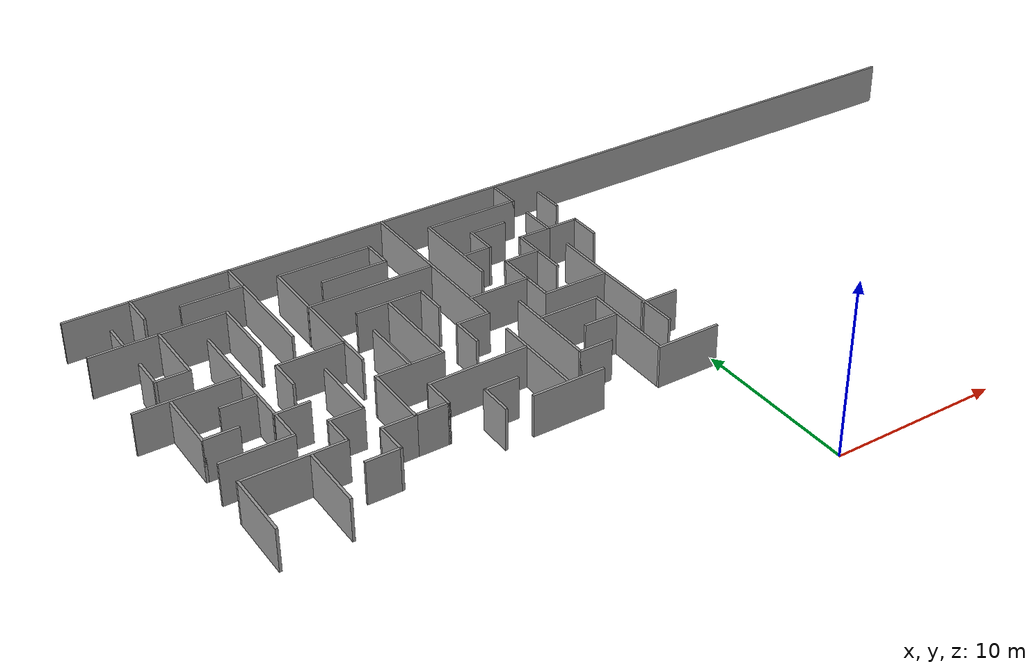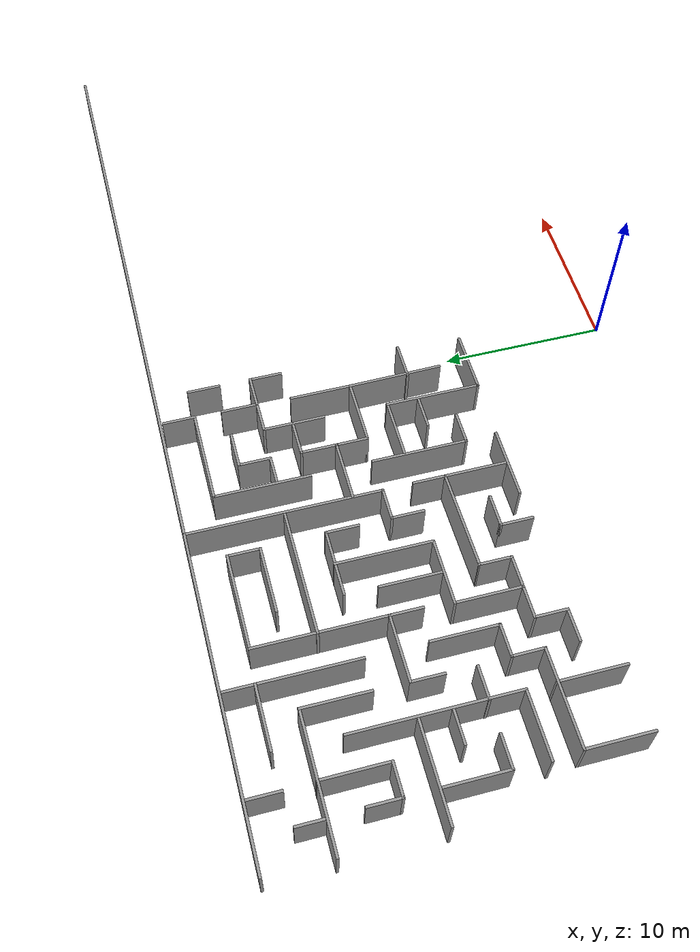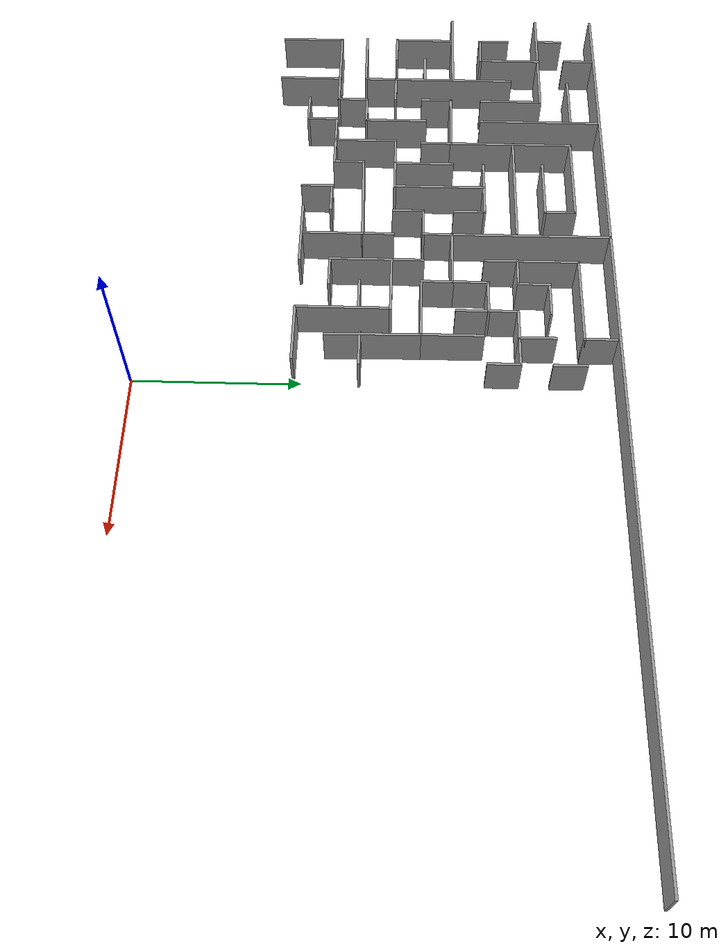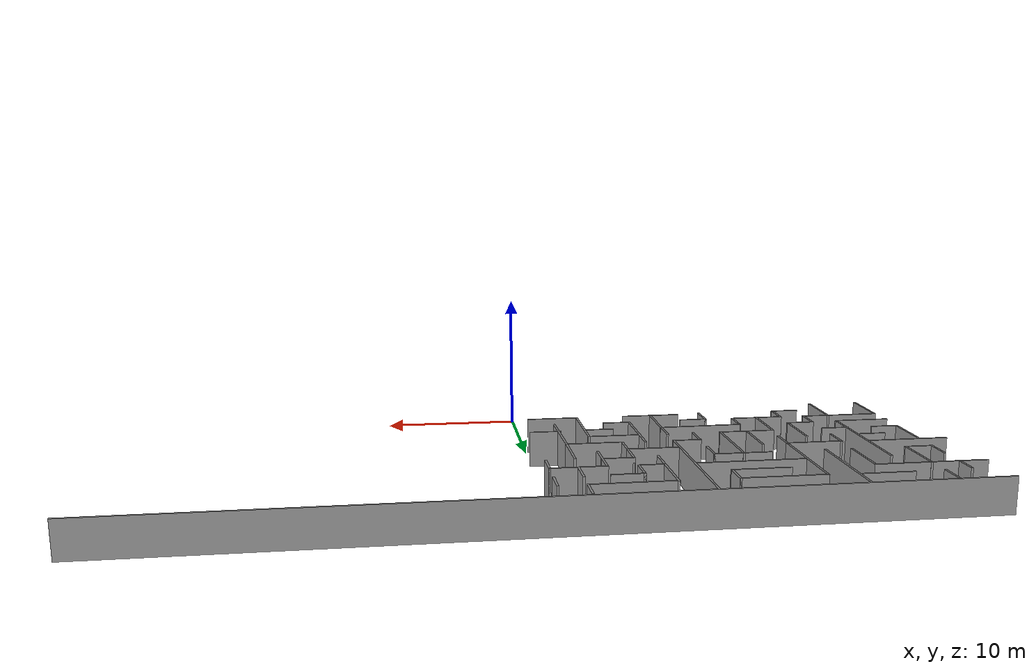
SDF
<sdf version="1.7">
 <model name="maze4">
  <pose>-0.019787 0.082438 0 0 -0 0</pose>
  <link name="Wall_0">
   <collision name="Wall_0_Collision">
    <geometry><box><size>56.75 0.15 2.5</size></box></geometry>
    <pose>0 0 1.25 0 -0 0</pose>
   </collision>
   <visual name="Wall_0_Visual">
    <pose>0 0 1.25 0 -0 0</pose>
    <geometry><box><size>56.75 0.15 2.5</size></box></geometry>
    <material>
     <script><uri>file://media/materials/scripts/gazebo.material</uri><name>Gazebo/Grey</name></script>
     <ambient>1 1 1 1</ambient>
    </material>
    <meta><layer>0</layer></meta>
   </visual>
   <pose>-0.021699 28.3197 0 0 -0 0</pose>
  </link>
  <link name="Wall_12">
   <collision name="Wall_12_Collision">
    <geometry><box><size>4 0.15 2.5</size></box></geometry>
    <pose>0 0 1.25 0 -0 0</pose>
   </collision>
   <visual name="Wall_12_Visual">
    <pose>0 0 1.25 0 -0 0</pose>
    <geometry><box><size>4 0.15 2.5</size></box></geometry>
    <material>
     <script><uri>file://media/materials/scripts/gazebo.material</uri><name>Gazebo/Grey</name></script>
     <ambient>1 1 1 1</ambient>
    </material>
    <meta><layer>0</layer></meta>
   </visual>
   <pose>-24.5528 22.6582 0 0 -0 -1.5708</pose>
  </link>
  <link name="Wall_13">
   <collision name="Wall_13_Collision">
    <geometry><box><size>2 0.15 2.5</size></box></geometry>
    <pose>0 0 1.25 0 -0 0</pose>
   </collision>
   <visual name="Wall_13_Visual">
    <pose>0 0 1.25 0 -0 0</pose>
    <geometry><box><size>2 0.15 2.5</size></box></geometry>
    <material>
     <script><uri>file://media/materials/scripts/gazebo.material</uri><name>Gazebo/Grey</name></script>
     <ambient>1 1 1 1</ambient>
    </material>
    <meta><layer>0</layer></meta>
   </visual>
   <pose>-25.4778 20.7332 0 0 -0 3.14159</pose>
  </link>
  <link name="Wall_14">
   <collision name="Wall_14_Collision">
    <geometry><box><size>2 0.15 2.5</size></box></geometry>
    <pose>0 0 1.25 0 -0 0</pose>
   </collision>
   <visual name="Wall_14_Visual">
    <pose>0 0 1.25 0 -0 0</pose>
    <geometry><box><size>2 0.15 2.5</size></box></geometry>
    <material>
     <script><uri>file://media/materials/scripts/gazebo.material</uri><name>Gazebo/Grey</name></script>
     <ambient>1 1 1 1</ambient>
    </material>
    <meta><layer>0</layer></meta>
   </visual>
   <pose>-26.4028 21.6582 0 0 -0 1.5708</pose>
  </link>
  <link name="Wall_16">
   <collision name="Wall_16_Collision">
    <geometry><box><size>7.75 0.15 2.5</size></box></geometry>
    <pose>0 0 1.25 0 -0 0</pose>
   </collision>
   <visual name="Wall_16_Visual">
    <pose>0 0 1.25 0 -0 0</pose>
    <geometry><box><size>7.75 0.15 2.5</size></box></geometry>
    <material>
     <script><uri>file://media/materials/scripts/gazebo.material</uri><name>Gazebo/Grey</name></script>
     <ambient>1 1 1 1</ambient>
    </material>
    <meta><layer>0</layer></meta>
   </visual>
   <pose>-18.9232 24.4586 0 0 -0 -1.5708</pose>
  </link>
  <link name="Wall_21">
   <collision name="Wall_21_Collision">
    <geometry><box><size>1.75 0.15 2.5</size></box></geometry>
    <pose>0 0 1.25 0 -0 0</pose>
   </collision>
   <visual name="Wall_21_Visual">
    <pose>0 0 1.25 0 -0 0</pose>
    <geometry><box><size>1.75 0.15 2.5</size></box></geometry>
    <material>
     <script><uri>file://media/materials/scripts/gazebo.material</uri><name>Gazebo/Grey</name></script>
     <ambient>1 1 1 1</ambient>
    </material>
    <meta><layer>0</layer></meta>
   </visual>
   <pose>-26.4603 25.3832 0 0 -0 1.5708</pose>
  </link>
  <link name="Wall_229">
   <collision name="Wall_229_Collision">
    <geometry><box><size>2 0.15 2.5</size></box></geometry>
    <pose>0 0 1.25 0 -0 0</pose>
   </collision>
   <visual name="Wall_229_Visual">
    <pose>0 0 1.25 0 -0 0</pose>
    <geometry><box><size>2 0.15 2.5</size></box></geometry>
    <material>
     <script><uri>file://media/materials/scripts/gazebo.material</uri><name>Gazebo/Grey</name></script>
     <ambient>1 1 1 1</ambient>
    </material>
    <meta><layer>0</layer></meta>
   </visual>
   <pose>-13.2028 10.2775 0 0 -0 1.5708</pose>
  </link>
  <link name="Wall_23">
   <collision name="Wall_23_Collision">
    <geometry><box><size>3.75 0.15 2.5</size></box></geometry>
    <pose>0 0 1.25 0 -0 0</pose>
   </collision>
   <visual name="Wall_23_Visual">
    <pose>0 0 1.25 0 -0 0</pose>
    <geometry><box><size>3.75 0.15 2.5</size></box></geometry>
    <material>
     <script><uri>file://media/materials/scripts/gazebo.material</uri><name>Gazebo/Grey</name></script>
     <ambient>1 1 1 1</ambient>
    </material>
    <meta><layer>0</layer></meta>
   </visual>
   <pose>-20.7234 26.4442 0 0 -0 3.14159</pose>
  </link>
  <link name="Wall_230">
   <collision name="Wall_230_Collision">
    <geometry><box><size>2 0.15 2.5</size></box></geometry>
    <pose>0 0 1.25 0 -0 0</pose>
   </collision>
   <visual name="Wall_230_Visual">
    <pose>0 0 1.25 0 -0 0</pose>
    <geometry><box><size>2 0.15 2.5</size></box></geometry>
    <material>
     <script><uri>file://media/materials/scripts/gazebo.material</uri><name>Gazebo/Grey</name></script>
     <ambient>1 1 1 1</ambient>
    </material>
    <meta><layer>0</layer></meta>
   </visual>
   <pose>-12.2778 11.2025 0 0 -0 0</pose>
  </link>
  <link name="Wall_235">
   <collision name="Wall_235_Collision">
    <geometry><box><size>4.25 0.15 2.5</size></box></geometry>
    <pose>0 0 1.25 0 -0 0</pose>
   </collision>
   <visual name="Wall_235_Visual">
    <pose>0 0 1.25 0 -0 0</pose>
    <geometry><box><size>4.25 0.15 2.5</size></box></geometry>
    <material>
     <script><uri>file://media/materials/scripts/gazebo.material</uri><name>Gazebo/Grey</name></script>
     <ambient>1 1 1 1</ambient>
    </material>
    <meta><layer>0</layer></meta>
   </visual>
   <pose>-9.41254 9.49371 0 0 -0 0</pose>
  </link>
  <link name="Wall_242">
   <collision name="Wall_242_Collision">
    <geometry><box><size>2 0.15 2.5</size></box></geometry>
    <pose>0 0 1.25 0 -0 0</pose>
   </collision>
   <visual name="Wall_242_Visual">
    <pose>0 0 1.25 0 -0 0</pose>
    <geometry><box><size>2 0.15 2.5</size></box></geometry>
    <material>
     <script><uri>file://media/materials/scripts/gazebo.material</uri><name>Gazebo/Grey</name></script>
     <ambient>1 1 1 1</ambient>
    </material>
    <meta><layer>0</layer></meta>
   </visual>
   <pose>-6.49825 11.3375 0 0 -0 3.14159</pose>
  </link>
  <link name="Wall_243">
   <collision name="Wall_243_Collision">
    <geometry><box><size>5.75 0.15 2.5</size></box></geometry>
    <pose>0 0 1.25 0 -0 0</pose>
   </collision>
   <visual name="Wall_243_Visual">
    <pose>0 0 1.25 0 -0 0</pose>
    <geometry><box><size>5.75 0.15 2.5</size></box></geometry>
    <material>
     <script><uri>file://media/materials/scripts/gazebo.material</uri><name>Gazebo/Grey</name></script>
     <ambient>1 1 1 1</ambient>
    </material>
    <meta><layer>0</layer></meta>
   </visual>
   <pose>-7.42325 14.1375 0 0 -0 1.5708</pose>
  </link>
  <link name="Wall_245">
   <collision name="Wall_245_Collision">
    <geometry><box><size>3.75 0.15 2.5</size></box></geometry>
    <pose>0 0 1.25 0 -0 0</pose>
   </collision>
   <visual name="Wall_245_Visual">
    <pose>0 0 1.25 0 -0 0</pose>
    <geometry><box><size>3.75 0.15 2.5</size></box></geometry>
    <material>
     <script><uri>file://media/materials/scripts/gazebo.material</uri><name>Gazebo/Grey</name></script>
     <ambient>1 1 1 1</ambient>
    </material>
    <meta><layer>0</layer></meta>
   </visual>
   <pose>-9.40475 11.4377 0 0 -0 1.5708</pose>
  </link>
  <link name="Wall_25">
   <collision name="Wall_25_Collision">
    <geometry><box><size>9.75 0.15 2.5</size></box></geometry>
    <pose>0 0 1.25 0 -0 0</pose>
   </collision>
   <visual name="Wall_25_Visual">
    <pose>0 0 1.25 0 -0 0</pose>
    <geometry><box><size>9.75 0.15 2.5</size></box></geometry>
    <material>
     <script><uri>file://media/materials/scripts/gazebo.material</uri><name>Gazebo/Grey</name></script>
     <ambient>1 1 1 1</ambient>
    </material>
    <meta><layer>0</layer></meta>
   </visual>
   <pose>-22.6453 17.8757 0 0 -0 -1.5708</pose>
  </link>
  <link name="Wall_26">
   <collision name="Wall_26_Collision">
    <geometry><box><size>4 0.15 2.5</size></box></geometry>
    <pose>0 0 1.25 0 -0 0</pose>
   </collision>
   <visual name="Wall_26_Visual">
    <pose>0 0 1.25 0 -0 0</pose>
    <geometry><box><size>4 0.15 2.5</size></box></geometry>
    <material>
     <script><uri>file://media/materials/scripts/gazebo.material</uri><name>Gazebo/Grey</name></script>
     <ambient>1 1 1 1</ambient>
    </material>
    <meta><layer>0</layer></meta>
   </visual>
   <pose>-24.5703 13.0757 0 0 -0 3.14159</pose>
  </link>
  <link name="Wall_28">
   <collision name="Wall_28_Collision">
    <geometry><box><size>5.75 0.15 2.5</size></box></geometry>
    <pose>0 0 1.25 0 -0 0</pose>
   </collision>
   <visual name="Wall_28_Visual">
    <pose>0 0 1.25 0 -0 0</pose>
    <geometry><box><size>5.75 0.15 2.5</size></box></geometry>
    <material>
     <script><uri>file://media/materials/scripts/gazebo.material</uri><name>Gazebo/Grey</name></script>
     <ambient>1 1 1 1</ambient>
    </material>
    <meta><layer>0</layer></meta>
   </visual>
   <pose>-25.5212 18.8608 0 0 -0 0</pose>
  </link>
  <link name="Wall_31">
   <collision name="Wall_31_Collision">
    <geometry><box><size>2 0.15 2.5</size></box></geometry>
    <pose>0 0 1.25 0 -0 0</pose>
   </collision>
   <visual name="Wall_31_Visual">
    <pose>0 0 1.25 0 -0 0</pose>
    <geometry><box><size>2 0.15 2.5</size></box></geometry>
    <material>
     <script><uri>file://media/materials/scripts/gazebo.material</uri><name>Gazebo/Grey</name></script>
     <ambient>1 1 1 1</ambient>
    </material>
    <meta><layer>0</layer></meta>
   </visual>
   <pose>-25.4888 15.1038 0 0 -0 0</pose>
  </link>
  <link name="Wall_33">
   <collision name="Wall_33_Collision">
    <geometry><box><size>3.75 0.15 2.5</size></box></geometry>
    <pose>0 0 1.25 0 -0 0</pose>
   </collision>
   <visual name="Wall_33_Visual">
    <pose>0 0 1.25 0 -0 0</pose>
    <geometry><box><size>3.75 0.15 2.5</size></box></geometry>
    <material>
     <script><uri>file://media/materials/scripts/gazebo.material</uri><name>Gazebo/Grey</name></script>
     <ambient>1 1 1 1</ambient>
    </material>
    <meta><layer>0</layer></meta>
   </visual>
   <pose>-26.4138 16.9038 0 0 -0 -1.5708</pose>
  </link>
  <link name="Wall_35">
   <collision name="Wall_35_Collision">
    <geometry><box><size>2 0.15 2.5</size></box></geometry>
    <pose>0 0 1.25 0 -0 0</pose>
   </collision>
   <visual name="Wall_35_Visual">
    <pose>0 0 1.25 0 -0 0</pose>
    <geometry><box><size>2 0.15 2.5</size></box></geometry>
    <material>
     <script><uri>file://media/materials/scripts/gazebo.material</uri><name>Gazebo/Grey</name></script>
     <ambient>1 1 1 1</ambient>
    </material>
    <meta><layer>0</layer></meta>
   </visual>
   <pose>-23.6891 16.9959 0 0 -0 0</pose>
  </link>
  <link name="Wall_39">
   <collision name="Wall_39_Collision">
    <geometry><box><size>2 0.15 2.5</size></box></geometry>
    <pose>0 0 1.25 0 -0 0</pose>
   </collision>
   <visual name="Wall_39_Visual">
    <pose>0 0 1.25 0 -0 0</pose>
    <geometry><box><size>2 0.15 2.5</size></box></geometry>
    <material>
     <script><uri>file://media/materials/scripts/gazebo.material</uri><name>Gazebo/Grey</name></script>
     <ambient>1 1 1 1</ambient>
    </material>
    <meta><layer>0</layer></meta>
   </visual>
   <pose>-21.761 15.0709 0 0 -0 0</pose>
  </link>
  <link name="Wall_41">
   <collision name="Wall_41_Collision">
    <geometry><box><size>4 0.15 2.5</size></box></geometry>
    <pose>0 0 1.25 0 -0 0</pose>
   </collision>
   <visual name="Wall_41_Visual">
    <pose>0 0 1.25 0 -0 0</pose>
    <geometry><box><size>4 0.15 2.5</size></box></geometry>
    <material>
     <script><uri>file://media/materials/scripts/gazebo.material</uri><name>Gazebo/Grey</name></script>
     <ambient>1 1 1 1</ambient>
    </material>
    <meta><layer>0</layer></meta>
   </visual>
   <pose>-18.8971 15.1218 0 0 -0 -1.5708</pose>
  </link>
  <link name="Wall_42">
   <collision name="Wall_42_Collision">
    <geometry><box><size>2 0.15 2.5</size></box></geometry>
    <pose>0 0 1.25 0 -0 0</pose>
   </collision>
   <visual name="Wall_42_Visual">
    <pose>0 0 1.25 0 -0 0</pose>
    <geometry><box><size>2 0.15 2.5</size></box></geometry>
    <material>
     <script><uri>file://media/materials/scripts/gazebo.material</uri><name>Gazebo/Grey</name></script>
     <ambient>1 1 1 1</ambient>
    </material>
    <meta><layer>0</layer></meta>
   </visual>
   <pose>-19.8221 13.1968 0 0 -0 3.14159</pose>
  </link>
  <link name="Wall_43">
   <collision name="Wall_43_Collision">
    <geometry><box><size>2 0.15 2.5</size></box></geometry>
    <pose>0 0 1.25 0 -0 0</pose>
   </collision>
   <visual name="Wall_43_Visual">
    <pose>0 0 1.25 0 -0 0</pose>
    <geometry><box><size>2 0.15 2.5</size></box></geometry>
    <material>
     <script><uri>file://media/materials/scripts/gazebo.material</uri><name>Gazebo/Grey</name></script>
     <ambient>1 1 1 1</ambient>
    </material>
    <meta><layer>0</layer></meta>
   </visual>
   <pose>-20.7471 12.2718 0 0 -0 -1.5708</pose>
  </link>
  <link name="Wall_44">
   <collision name="Wall_44_Collision">
    <geometry><box><size>5.75 0.15 2.5</size></box></geometry>
    <pose>0 0 1.25 0 -0 0</pose>
   </collision>
   <visual name="Wall_44_Visual">
    <pose>0 0 1.25 0 -0 0</pose>
    <geometry><box><size>5.75 0.15 2.5</size></box></geometry>
    <material>
     <script><uri>file://media/materials/scripts/gazebo.material</uri><name>Gazebo/Grey</name></script>
     <ambient>1 1 1 1</ambient>
    </material>
    <meta><layer>0</layer></meta>
   </visual>
   <pose>-23.5471 11.3468 0 0 -0 3.14159</pose>
  </link>
  <link name="Wall_45">
   <collision name="Wall_45_Collision">
    <geometry><box><size>4 0.15 2.5</size></box></geometry>
    <pose>0 0 1.25 0 -0 0</pose>
   </collision>
   <visual name="Wall_45_Visual">
    <pose>0 0 1.25 0 -0 0</pose>
    <geometry><box><size>4 0.15 2.5</size></box></geometry>
    <material>
     <script><uri>file://media/materials/scripts/gazebo.material</uri><name>Gazebo/Grey</name></script>
     <ambient>1 1 1 1</ambient>
    </material>
    <meta><layer>0</layer></meta>
   </visual>
   <pose>-26.3471 9.42178 0 0 -0 -1.5708</pose>
  </link>
  <link name="Wall_47">
   <collision name="Wall_47_Collision">
    <geometry><box><size>2 0.15 2.5</size></box></geometry>
    <pose>0 0 1.25 0 -0 0</pose>
   </collision>
   <visual name="Wall_47_Visual">
    <pose>0 0 1.25 0 -0 0</pose>
    <geometry><box><size>2 0.15 2.5</size></box></geometry>
    <material>
     <script><uri>file://media/materials/scripts/gazebo.material</uri><name>Gazebo/Grey</name></script>
     <ambient>1 1 1 1</ambient>
    </material>
    <meta><layer>0</layer></meta>
   </visual>
   <pose>-20.7879 17.7732 0 0 -0 1.5708</pose>
  </link>
  <link name="Wall_48">
   <collision name="Wall_48_Collision">
    <geometry><box><size>4 0.15 2.5</size></box></geometry>
    <pose>0 0 1.25 0 -0 0</pose>
   </collision>
   <visual name="Wall_48_Visual">
    <pose>0 0 1.25 0 -0 0</pose>
    <geometry><box><size>4 0.15 2.5</size></box></geometry>
    <material>
     <script><uri>file://media/materials/scripts/gazebo.material</uri><name>Gazebo/Grey</name></script>
     <ambient>1 1 1 1</ambient>
    </material>
    <meta><layer>0</layer></meta>
   </visual>
   <pose>-18.8629 18.6982 0 0 -0 0</pose>
  </link>
  <link name="Wall_49">
   <collision name="Wall_49_Collision">
    <geometry><box><size>7.75 0.15 2.5</size></box></geometry>
    <pose>0 0 1.25 0 -0 0</pose>
   </collision>
   <visual name="Wall_49_Visual">
    <pose>0 0 1.25 0 -0 0</pose>
    <geometry><box><size>7.75 0.15 2.5</size></box></geometry>
    <material>
     <script><uri>file://media/materials/scripts/gazebo.material</uri><name>Gazebo/Grey</name></script>
     <ambient>1 1 1 1</ambient>
    </material>
    <meta><layer>0</layer></meta>
   </visual>
   <pose>-16.9379 22.4982 0 0 -0 1.5708</pose>
  </link>
  <link name="Wall_493">
   <collision name="Wall_493_Collision">
    <geometry><box><size>5.75 0.15 2.5</size></box></geometry>
    <pose>0 0 1.25 0 -0 0</pose>
   </collision>
   <visual name="Wall_493_Visual">
    <pose>0 0 1.25 0 -0 0</pose>
    <geometry><box><size>5.75 0.15 2.5</size></box></geometry>
    <material>
     <script><uri>file://media/materials/scripts/gazebo.material</uri><name>Gazebo/Grey</name></script>
     <ambient>1 1 1 1</ambient>
    </material>
    <meta><layer>0</layer></meta>
   </visual>
   <pose>-7.46583 23.4538 0 0 -0 1.5708</pose>
  </link>
  <link name="Wall_494">
   <collision name="Wall_494_Collision">
    <geometry><box><size>5.75 0.15 2.5</size></box></geometry>
    <pose>0 0 1.25 0 -0 0</pose>
   </collision>
   <visual name="Wall_494_Visual">
    <pose>0 0 1.25 0 -0 0</pose>
    <geometry><box><size>5.75 0.15 2.5</size></box></geometry>
    <material>
     <script><uri>file://media/materials/scripts/gazebo.material</uri><name>Gazebo/Grey</name></script>
     <ambient>1 1 1 1</ambient>
    </material>
    <meta><layer>0</layer></meta>
   </visual>
   <pose>-4.66583 26.2538 0 0 -0 0</pose>
  </link>
  <link name="Wall_495">
   <collision name="Wall_495_Collision">
    <geometry><box><size>2 0.15 2.5</size></box></geometry>
    <pose>0 0 1.25 0 -0 0</pose>
   </collision>
   <visual name="Wall_495_Visual">
    <pose>0 0 1.25 0 -0 0</pose>
    <geometry><box><size>2 0.15 2.5</size></box></geometry>
    <material>
     <script><uri>file://media/materials/scripts/gazebo.material</uri><name>Gazebo/Grey</name></script>
     <ambient>1 1 1 1</ambient>
    </material>
    <meta><layer>0</layer></meta>
   </visual>
   <pose>-1.86583 27.1788 0 0 -0 1.5708</pose>
  </link>
  <link name="Wall_497">
   <collision name="Wall_497_Collision">
    <geometry><box><size>1.75 0.15 2.5</size></box></geometry>
    <pose>0 0 1.25 0 -0 0</pose>
   </collision>
   <visual name="Wall_497_Visual">
    <pose>0 0 1.25 0 -0 0</pose>
    <geometry><box><size>1.75 0.15 2.5</size></box></geometry>
    <material>
     <script><uri>file://media/materials/scripts/gazebo.material</uri><name>Gazebo/Grey</name></script>
     <ambient>1 1 1 1</ambient>
    </material>
    <meta><layer>0</layer></meta>
   </visual>
   <pose>-6.55994 22.591 0 0 -0 0</pose>
  </link>
  <link name="Wall_498">
   <collision name="Wall_498_Collision">
    <geometry><box><size>2 0.15 2.5</size></box></geometry>
    <pose>0 0 1.25 0 -0 0</pose>
   </collision>
   <visual name="Wall_498_Visual">
    <pose>0 0 1.25 0 -0 0</pose>
    <geometry><box><size>2 0.15 2.5</size></box></geometry>
    <material>
     <script><uri>file://media/materials/scripts/gazebo.material</uri><name>Gazebo/Grey</name></script>
     <ambient>1 1 1 1</ambient>
    </material>
    <meta><layer>0</layer></meta>
   </visual>
   <pose>-5.75994 23.516 0 0 -0 1.5708</pose>
  </link>
  <link name="Wall_499">
   <collision name="Wall_499_Collision">
    <geometry><box><size>2.25 0.15 2.5</size></box></geometry>
    <pose>0 0 1.25 0 -0 0</pose>
   </collision>
   <visual name="Wall_499_Visual">
    <pose>0 0 1.25 0 -0 0</pose>
    <geometry><box><size>2.25 0.15 2.5</size></box></geometry>
    <material>
     <script><uri>file://media/materials/scripts/gazebo.material</uri><name>Gazebo/Grey</name></script>
     <ambient>1 1 1 1</ambient>
    </material>
    <meta><layer>0</layer></meta>
   </visual>
   <pose>-4.70994 24.441 0 0 -0 0</pose>
  </link>
  <link name="Wall_5">
   <collision name="Wall_5_Collision">
    <geometry><box><size>2 0.15 2.5</size></box></geometry>
    <pose>0 0 1.25 0 -0 0</pose>
   </collision>
   <visual name="Wall_5_Visual">
    <pose>0 0 1.25 0 -0 0</pose>
    <geometry><box><size>2 0.15 2.5</size></box></geometry>
    <material>
     <script><uri>file://media/materials/scripts/gazebo.material</uri><name>Gazebo/Grey</name></script>
     <ambient>1 1 1 1</ambient>
    </material>
    <meta><layer>0</layer></meta>
   </visual>
   <pose>-24.6137 27.3057 0 0 -0 -1.5708</pose>
  </link>
  <link name="Wall_50">
   <collision name="Wall_50_Collision">
    <geometry><box><size>5.75 0.15 2.5</size></box></geometry>
    <pose>0 0 1.25 0 -0 0</pose>
   </collision>
   <visual name="Wall_50_Visual">
    <pose>0 0 1.25 0 -0 0</pose>
    <geometry><box><size>5.75 0.15 2.5</size></box></geometry>
    <material>
     <script><uri>file://media/materials/scripts/gazebo.material</uri><name>Gazebo/Grey</name></script>
     <ambient>1 1 1 1</ambient>
    </material>
    <meta><layer>0</layer></meta>
   </visual>
   <pose>-14.1379 26.2982 0 0 -0 0</pose>
  </link>
  <link name="Wall_501">
   <collision name="Wall_501_Collision">
    <geometry><box><size>2 0.15 2.5</size></box></geometry>
    <pose>0 0 1.25 0 -0 0</pose>
   </collision>
   <visual name="Wall_501_Visual">
    <pose>0 0 1.25 0 -0 0</pose>
    <geometry><box><size>2 0.15 2.5</size></box></geometry>
    <material>
     <script><uri>file://media/materials/scripts/gazebo.material</uri><name>Gazebo/Grey</name></script>
     <ambient>1 1 1 1</ambient>
    </material>
    <meta><layer>0</layer></meta>
   </visual>
   <pose>-0.024189 25.3498 0 0 -0 1.5708</pose>
  </link>
  <link name="Wall_508">
   <collision name="Wall_508_Collision">
    <geometry><box><size>2 0.15 2.5</size></box></geometry>
    <pose>0 0 1.25 0 -0 0</pose>
   </collision>
   <visual name="Wall_508_Visual">
    <pose>0 0 1.25 0 -0 0</pose>
    <geometry><box><size>2 0.15 2.5</size></box></geometry>
    <material>
     <script><uri>file://media/materials/scripts/gazebo.material</uri><name>Gazebo/Grey</name></script>
     <ambient>1 1 1 1</ambient>
    </material>
    <meta><layer>0</layer></meta>
   </visual>
   <pose>-0.024189 25.3498 0 0 -0 1.5708</pose>
  </link>
  <link name="Wall_51">
   <collision name="Wall_51_Collision">
    <geometry><box><size>2 0.15 2.5</size></box></geometry>
    <pose>0 0 1.25 0 -0 0</pose>
   </collision>
   <visual name="Wall_51_Visual">
    <pose>0 0 1.25 0 -0 0</pose>
    <geometry><box><size>2 0.15 2.5</size></box></geometry>
    <material>
     <script><uri>file://media/materials/scripts/gazebo.material</uri><name>Gazebo/Grey</name></script>
     <ambient>1 1 1 1</ambient>
    </material>
    <meta><layer>0</layer></meta>
   </visual>
   <pose>-11.3379 25.3732 0 0 -0 -1.5708</pose>
  </link>
  <link name="Wall_514">
   <collision name="Wall_514_Collision">
    <geometry><box><size>2.25 0.15 2.5</size></box></geometry>
    <pose>0 0 1.25 0 -0 0</pose>
   </collision>
   <visual name="Wall_514_Visual">
    <pose>0 0 1.25 0 -0 0</pose>
    <geometry><box><size>2.25 0.15 2.5</size></box></geometry>
    <material>
     <script><uri>file://media/materials/scripts/gazebo.material</uri><name>Gazebo/Grey</name></script>
     <ambient>1 1 1 1</ambient>
    </material>
    <meta><layer>0</layer></meta>
   </visual>
   <pose>-1.89019 23.5584 0 0 -0 -1.5708</pose>
  </link>
  <link name="Wall_515">
   <collision name="Wall_515_Collision">
    <geometry><box><size>2 0.15 2.5</size></box></geometry>
    <pose>0 0 1.25 0 -0 0</pose>
   </collision>
   <visual name="Wall_515_Visual">
    <pose>0 0 1.25 0 -0 0</pose>
    <geometry><box><size>2 0.15 2.5</size></box></geometry>
    <material>
     <script><uri>file://media/materials/scripts/gazebo.material</uri><name>Gazebo/Grey</name></script>
     <ambient>1 1 1 1</ambient>
    </material>
    <meta><layer>0</layer></meta>
   </visual>
   <pose>-0.965193 22.5084 0 0 -0 0</pose>
  </link>
  <link name="Wall_516">
   <collision name="Wall_516_Collision">
    <geometry><box><size>2 0.15 2.5</size></box></geometry>
    <pose>0 0 1.25 0 -0 0</pose>
   </collision>
   <visual name="Wall_516_Visual">
    <pose>0 0 1.25 0 -0 0</pose>
    <geometry><box><size>2 0.15 2.5</size></box></geometry>
    <material>
     <script><uri>file://media/materials/scripts/gazebo.material</uri><name>Gazebo/Grey</name></script>
     <ambient>1 1 1 1</ambient>
    </material>
    <meta><layer>0</layer></meta>
   </visual>
   <pose>-0.040193 21.5834 0 0 -0 -1.5708</pose>
  </link>
  <link name="Wall_518">
   <collision name="Wall_518_Collision">
    <geometry><box><size>2 0.15 2.5</size></box></geometry>
    <pose>0 0 1.25 0 -0 0</pose>
   </collision>
   <visual name="Wall_518_Visual">
    <pose>0 0 1.25 0 -0 0</pose>
    <geometry><box><size>2 0.15 2.5</size></box></geometry>
    <material>
     <script><uri>file://media/materials/scripts/gazebo.material</uri><name>Gazebo/Grey</name></script>
     <ambient>1 1 1 1</ambient>
    </material>
    <meta><layer>0</layer></meta>
   </visual>
   <pose>-2.81519 22.5084 0 0 -0 3.14159</pose>
  </link>
  <link name="Wall_519">
   <collision name="Wall_519_Collision">
    <geometry><box><size>3.75 0.15 2.5</size></box></geometry>
    <pose>0 0 1.25 0 -0 0</pose>
   </collision>
   <visual name="Wall_519_Visual">
    <pose>0 0 1.25 0 -0 0</pose>
    <geometry><box><size>3.75 0.15 2.5</size></box></geometry>
    <material>
     <script><uri>file://media/materials/scripts/gazebo.material</uri><name>Gazebo/Grey</name></script>
     <ambient>1 1 1 1</ambient>
    </material>
    <meta><layer>0</layer></meta>
   </visual>
   <pose>-3.74019 20.7084 0 0 -0 -1.5708</pose>
  </link>
  <link name="Wall_52">
   <collision name="Wall_52_Collision">
    <geometry><box><size>4 0.15 2.5</size></box></geometry>
    <pose>0 0 1.25 0 -0 0</pose>
   </collision>
   <visual name="Wall_52_Visual">
    <pose>0 0 1.25 0 -0 0</pose>
    <geometry><box><size>4 0.15 2.5</size></box></geometry>
    <material>
     <script><uri>file://media/materials/scripts/gazebo.material</uri><name>Gazebo/Grey</name></script>
     <ambient>1 1 1 1</ambient>
    </material>
    <meta><layer>0</layer></meta>
   </visual>
   <pose>-13.2629 24.4482 0 0 -0 3.14159</pose>
  </link>
  <link name="Wall_521">
   <collision name="Wall_521_Collision">
    <geometry><box><size>2.25 0.15 2.5</size></box></geometry>
    <pose>0 0 1.25 0 -0 0</pose>
   </collision>
   <visual name="Wall_521_Visual">
    <pose>0 0 1.25 0 -0 0</pose>
    <geometry><box><size>2.25 0.15 2.5</size></box></geometry>
    <material>
     <script><uri>file://media/materials/scripts/gazebo.material</uri><name>Gazebo/Grey</name></script>
     <ambient>1 1 1 1</ambient>
    </material>
    <meta><layer>0</layer></meta>
   </visual>
   <pose>-4.77561 20.7846 0 0 -0 3.14159</pose>
  </link>
  <link name="Wall_522">
   <collision name="Wall_522_Collision">
    <geometry><box><size>2.25 0.15 2.5</size></box></geometry>
    <pose>0 0 1.25 0 -0 0</pose>
   </collision>
   <visual name="Wall_522_Visual">
    <pose>0 0 1.25 0 -0 0</pose>
    <geometry><box><size>2.25 0.15 2.5</size></box></geometry>
    <material>
     <script><uri>file://media/materials/scripts/gazebo.material</uri><name>Gazebo/Grey</name></script>
     <ambient>1 1 1 1</ambient>
    </material>
    <meta><layer>0</layer></meta>
   </visual>
   <pose>-5.82561 19.7346 0 0 -0 -1.5708</pose>
  </link>
  <link name="Wall_523">
   <collision name="Wall_523_Collision">
    <geometry><box><size>3.75 0.15 2.5</size></box></geometry>
    <pose>0 0 1.25 0 -0 0</pose>
   </collision>
   <visual name="Wall_523_Visual">
    <pose>0 0 1.25 0 -0 0</pose>
    <geometry><box><size>3.75 0.15 2.5</size></box></geometry>
    <material>
     <script><uri>file://media/materials/scripts/gazebo.material</uri><name>Gazebo/Grey</name></script>
     <ambient>1 1 1 1</ambient>
    </material>
    <meta><layer>0</layer></meta>
   </visual>
   <pose>-7.62561 18.6846 0 0 -0 3.14159</pose>
  </link>
  <link name="Wall_525">
   <collision name="Wall_525_Collision">
    <geometry><box><size>2 0.15 2.5</size></box></geometry>
    <pose>0 0 1.25 0 -0 0</pose>
   </collision>
   <visual name="Wall_525_Visual">
    <pose>0 0 1.25 0 -0 0</pose>
    <geometry><box><size>2 0.15 2.5</size></box></geometry>
    <material>
     <script><uri>file://media/materials/scripts/gazebo.material</uri><name>Gazebo/Grey</name></script>
     <ambient>1 1 1 1</ambient>
    </material>
    <meta><layer>0</layer></meta>
   </visual>
   <pose>-5.82561 17.7596 0 0 -0 -1.5708</pose>
  </link>
  <link name="Wall_526">
   <collision name="Wall_526_Collision">
    <geometry><box><size>4 0.15 2.5</size></box></geometry>
    <pose>0 0 1.25 0 -0 0</pose>
   </collision>
   <visual name="Wall_526_Visual">
    <pose>0 0 1.25 0 -0 0</pose>
    <geometry><box><size>4 0.15 2.5</size></box></geometry>
    <material>
     <script><uri>file://media/materials/scripts/gazebo.material</uri><name>Gazebo/Grey</name></script>
     <ambient>1 1 1 1</ambient>
    </material>
    <meta><layer>0</layer></meta>
   </visual>
   <pose>-3.90061 16.8346 0 0 -0 0</pose>
  </link>
  <link name="Wall_527">
   <collision name="Wall_527_Collision">
    <geometry><box><size>3.75 0.15 2.5</size></box></geometry>
    <pose>0 0 1.25 0 -0 0</pose>
   </collision>
   <visual name="Wall_527_Visual">
    <pose>0 0 1.25 0 -0 0</pose>
    <geometry><box><size>3.75 0.15 2.5</size></box></geometry>
    <material>
     <script><uri>file://media/materials/scripts/gazebo.material</uri><name>Gazebo/Grey</name></script>
     <ambient>1 1 1 1</ambient>
    </material>
    <meta><layer>0</layer></meta>
   </visual>
   <pose>-1.97561 18.6346 0 0 -0 1.5708</pose>
  </link>
  <link name="Wall_55">
   <collision name="Wall_55_Collision">
    <geometry><box><size>2 0.15 2.5</size></box></geometry>
    <pose>0 0 1.25 0 -0 0</pose>
   </collision>
   <visual name="Wall_55_Visual">
    <pose>0 0 1.25 0 -0 0</pose>
    <geometry><box><size>2 0.15 2.5</size></box></geometry>
    <material>
     <script><uri>file://media/materials/scripts/gazebo.material</uri><name>Gazebo/Grey</name></script>
     <ambient>1 1 1 1</ambient>
    </material>
    <meta><layer>0</layer></meta>
   </visual>
   <pose>-16.9379 17.7732 0 0 -0 -1.5708</pose>
  </link>
  <link name="Wall_57">
   <collision name="Wall_57_Collision">
    <geometry><box><size>11.5 0.15 2.5</size></box></geometry>
    <pose>0 0 1.25 0 -0 0</pose>
   </collision>
   <visual name="Wall_57_Visual">
    <pose>0 0 1.25 0 -0 0</pose>
    <geometry><box><size>11.5 0.15 2.5</size></box></geometry>
    <material>
     <script><uri>file://media/materials/scripts/gazebo.material</uri><name>Gazebo/Grey</name></script>
     <ambient>1 1 1 1</ambient>
    </material>
    <meta><layer>0</layer></meta>
   </visual>
   <pose>-9.42863 22.6123 0 0 -0 -1.5708</pose>
  </link>
  <link name="Wall_58">
   <collision name="Wall_58_Collision">
    <geometry><box><size>2 0.15 2.5</size></box></geometry>
    <pose>0 0 1.25 0 -0 0</pose>
   </collision>
   <visual name="Wall_58_Visual">
    <pose>0 0 1.25 0 -0 0</pose>
    <geometry><box><size>2 0.15 2.5</size></box></geometry>
    <material>
     <script><uri>file://media/materials/scripts/gazebo.material</uri><name>Gazebo/Grey</name></script>
     <ambient>1 1 1 1</ambient>
    </material>
    <meta><layer>0</layer></meta>
   </visual>
   <pose>-10.3536 16.9373 0 0 -0 3.14159</pose>
  </link>
  <link name="Wall_59">
   <collision name="Wall_59_Collision">
    <geometry><box><size>2 0.15 2.5</size></box></geometry>
    <pose>0 0 1.25 0 -0 0</pose>
   </collision>
   <visual name="Wall_59_Visual">
    <pose>0 0 1.25 0 -0 0</pose>
    <geometry><box><size>2 0.15 2.5</size></box></geometry>
    <material>
     <script><uri>file://media/materials/scripts/gazebo.material</uri><name>Gazebo/Grey</name></script>
     <ambient>1 1 1 1</ambient>
    </material>
    <meta><layer>0</layer></meta>
   </visual>
   <pose>-11.2786 16.0123 0 0 -0 -1.5708</pose>
  </link>
  <link name="Wall_61">
   <collision name="Wall_61_Collision">
    <geometry><box><size>2 0.15 2.5</size></box></geometry>
    <pose>0 0 1.25 0 -0 0</pose>
   </collision>
   <visual name="Wall_61_Visual">
    <pose>0 0 1.25 0 -0 0</pose>
    <geometry><box><size>2 0.15 2.5</size></box></geometry>
    <material>
     <script><uri>file://media/materials/scripts/gazebo.material</uri><name>Gazebo/Grey</name></script>
     <ambient>1 1 1 1</ambient>
    </material>
    <meta><layer>0</layer></meta>
   </visual>
   <pose>-11.264 19.7905 0 0 -0 1.5708</pose>
  </link>
  <link name="Wall_62">
   <collision name="Wall_62_Collision">
    <geometry><box><size>4 0.15 2.5</size></box></geometry>
    <pose>0 0 1.25 0 -0 0</pose>
   </collision>
   <visual name="Wall_62_Visual">
    <pose>0 0 1.25 0 -0 0</pose>
    <geometry><box><size>4 0.15 2.5</size></box></geometry>
    <material>
     <script><uri>file://media/materials/scripts/gazebo.material</uri><name>Gazebo/Grey</name></script>
     <ambient>1 1 1 1</ambient>
    </material>
    <meta><layer>0</layer></meta>
   </visual>
   <pose>-13.189 20.7155 0 0 -0 3.14159</pose>
  </link>
  <link name="Wall_64">
   <collision name="Wall_64_Collision">
    <geometry><box><size>5.75 0.15 2.5</size></box></geometry>
    <pose>0 0 1.25 0 -0 0</pose>
   </collision>
   <visual name="Wall_64_Visual">
    <pose>0 0 1.25 0 -0 0</pose>
    <geometry><box><size>5.75 0.15 2.5</size></box></geometry>
    <material>
     <script><uri>file://media/materials/scripts/gazebo.material</uri><name>Gazebo/Grey</name></script>
     <ambient>1 1 1 1</ambient>
    </material>
    <meta><layer>0</layer></meta>
   </visual>
   <pose>-13.2524 17.9315 0 0 -0 -1.5708</pose>
  </link>
  <link name="Wall_65">
   <collision name="Wall_65_Collision">
    <geometry><box><size>4 0.15 2.5</size></box></geometry>
    <pose>0 0 1.25 0 -0 0</pose>
   </collision>
   <visual name="Wall_65_Visual">
    <pose>0 0 1.25 0 -0 0</pose>
    <geometry><box><size>4 0.15 2.5</size></box></geometry>
    <material>
     <script><uri>file://media/materials/scripts/gazebo.material</uri><name>Gazebo/Grey</name></script>
     <ambient>1 1 1 1</ambient>
    </material>
    <meta><layer>0</layer></meta>
   </visual>
   <pose>-15.1774 15.1315 0 0 -0 3.14159</pose>
  </link>
  <link name="Wall_66">
   <collision name="Wall_66_Collision">
    <geometry><box><size>4 0.15 2.5</size></box></geometry>
    <pose>0 0 1.25 0 -0 0</pose>
   </collision>
   <visual name="Wall_66_Visual">
    <pose>0 0 1.25 0 -0 0</pose>
    <geometry><box><size>4 0.15 2.5</size></box></geometry>
    <material>
     <script><uri>file://media/materials/scripts/gazebo.material</uri><name>Gazebo/Grey</name></script>
     <ambient>1 1 1 1</ambient>
    </material>
    <meta><layer>0</layer></meta>
   </visual>
   <pose>-17.1024 13.2065 0 0 -0 -1.5708</pose>
  </link>
  <link name="Wall_67">
   <collision name="Wall_67_Collision">
    <geometry><box><size>2 0.15 2.5</size></box></geometry>
    <pose>0 0 1.25 0 -0 0</pose>
   </collision>
   <visual name="Wall_67_Visual">
    <pose>0 0 1.25 0 -0 0</pose>
    <geometry><box><size>2 0.15 2.5</size></box></geometry>
    <material>
     <script><uri>file://media/materials/scripts/gazebo.material</uri><name>Gazebo/Grey</name></script>
     <ambient>1 1 1 1</ambient>
    </material>
    <meta><layer>0</layer></meta>
   </visual>
   <pose>-18.0274 11.2815 0 0 -0 3.14159</pose>
  </link>
  <link name="Wall_675">
   <collision name="Wall_675_Collision">
    <geometry><box><size>3.75 0.15 2.5</size></box></geometry>
    <pose>0 0 1.25 0 -0 0</pose>
   </collision>
   <visual name="Wall_675_Visual">
    <pose>0 0 1.25 0 -0 0</pose>
    <geometry><box><size>3.75 0.15 2.5</size></box></geometry>
    <material>
     <script><uri>file://media/materials/scripts/gazebo.material</uri><name>Gazebo/Grey</name></script>
     <ambient>1 1 1 1</ambient>
    </material>
    <meta><layer>0</layer></meta>
   </visual>
   <pose>-2.01882 9.43986 0 0 -0 3.14159</pose>
  </link>
  <link name="Wall_676">
   <collision name="Wall_676_Collision">
    <geometry><box><size>5.75 0.15 2.5</size></box></geometry>
    <pose>0 0 1.25 0 -0 0</pose>
   </collision>
   <visual name="Wall_676_Visual">
    <pose>0 0 1.25 0 -0 0</pose>
    <geometry><box><size>5.75 0.15 2.5</size></box></geometry>
    <material>
     <script><uri>file://media/materials/scripts/gazebo.material</uri><name>Gazebo/Grey</name></script>
     <ambient>1 1 1 1</ambient>
    </material>
    <meta><layer>0</layer></meta>
   </visual>
   <pose>-3.81882 12.2399 0 0 -0 1.5708</pose>
  </link>
  <link name="Wall_677">
   <collision name="Wall_677_Collision">
    <geometry><box><size>3.75 0.15 2.5</size></box></geometry>
    <pose>0 0 1.25 0 -0 0</pose>
   </collision>
   <visual name="Wall_677_Visual">
    <pose>0 0 1.25 0 -0 0</pose>
    <geometry><box><size>3.75 0.15 2.5</size></box></geometry>
    <material>
     <script><uri>file://media/materials/scripts/gazebo.material</uri><name>Gazebo/Grey</name></script>
     <ambient>1 1 1 1</ambient>
    </material>
    <meta><layer>0</layer></meta>
   </visual>
   <pose>-5.61882 15.0399 0 0 -0 3.14159</pose>
  </link>
  <link name="Wall_679">
   <collision name="Wall_679_Collision">
    <geometry><box><size>2 0.15 2.5</size></box></geometry>
    <pose>0 0 1.25 0 -0 0</pose>
   </collision>
   <visual name="Wall_679_Visual">
    <pose>0 0 1.25 0 -0 0</pose>
    <geometry><box><size>2 0.15 2.5</size></box></geometry>
    <material>
     <script><uri>file://media/materials/scripts/gazebo.material</uri><name>Gazebo/Grey</name></script>
     <ambient>1 1 1 1</ambient>
    </material>
    <meta><layer>0</layer></meta>
   </visual>
   <pose>-4.87669 13.1618 0 0 -0 0</pose>
  </link>
  <link name="Wall_68">
   <collision name="Wall_68_Collision">
    <geometry><box><size>2 0.15 2.5</size></box></geometry>
    <pose>0 0 1.25 0 -0 0</pose>
   </collision>
   <visual name="Wall_68_Visual">
    <pose>0 0 1.25 0 -0 0</pose>
    <geometry><box><size>2 0.15 2.5</size></box></geometry>
    <material>
     <script><uri>file://media/materials/scripts/gazebo.material</uri><name>Gazebo/Grey</name></script>
     <ambient>1 1 1 1</ambient>
    </material>
    <meta><layer>0</layer></meta>
   </visual>
   <pose>-18.9524 10.3565 0 0 -0 -1.5708</pose>
  </link>
  <link name="Wall_682">
   <collision name="Wall_682_Collision">
    <geometry><box><size>5.72482 0.15 2.5</size></box></geometry>
    <pose>0 0 1.25 0 -0 0</pose>
   </collision>
   <visual name="Wall_682_Visual">
    <pose>0 0 1.25 0 -0 0</pose>
    <geometry><box><size>5.72482 0.15 2.5</size></box></geometry>
    <material>
     <script><uri>file://media/materials/scripts/gazebo.material</uri><name>Gazebo/Grey</name></script>
     <ambient>1 1 1 1</ambient>
    </material>
    <meta><layer>0</layer></meta>
   </visual>
   <pose>-1.93512 14.0475 0 0 -0 1.58532</pose>
  </link>
  <link name="Wall_687">
   <collision name="Wall_687_Collision">
    <geometry><box><size>2.25 0.15 2.5</size></box></geometry>
    <pose>0 0 1.25 0 -0 0</pose>
   </collision>
   <visual name="Wall_687_Visual">
    <pose>0 0 1.25 0 -0 0</pose>
    <geometry><box><size>2.25 0.15 2.5</size></box></geometry>
    <material>
     <script><uri>file://media/materials/scripts/gazebo.material</uri><name>Gazebo/Grey</name></script>
     <ambient>1 1 1 1</ambient>
    </material>
    <meta><layer>0</layer></meta>
   </visual>
   <pose>-0.989319 13.2831 0 0 -0 0</pose>
  </link>
  <link name="Wall_69">
   <collision name="Wall_69_Collision">
    <geometry><box><size>2 0.15 2.5</size></box></geometry>
    <pose>0 0 1.25 0 -0 0</pose>
   </collision>
   <visual name="Wall_69_Visual">
    <pose>0 0 1.25 0 -0 0</pose>
    <geometry><box><size>2 0.15 2.5</size></box></geometry>
    <material>
     <script><uri>file://media/materials/scripts/gazebo.material</uri><name>Gazebo/Grey</name></script>
     <ambient>1 1 1 1</ambient>
    </material>
    <meta><layer>0</layer></meta>
   </visual>
   <pose>-19.8774 9.43154 0 0 -0 3.14159</pose>
  </link>
  <link name="Wall_7">
   <collision name="Wall_7_Collision">
    <geometry><box><size>7.75 0.15 2.5</size></box></geometry>
    <pose>0 0 1.25 0 -0 0</pose>
   </collision>
   <visual name="Wall_7_Visual">
    <pose>0 0 1.25 0 -0 0</pose>
    <geometry><box><size>7.75 0.15 2.5</size></box></geometry>
    <material>
     <script><uri>file://media/materials/scripts/gazebo.material</uri><name>Gazebo/Grey</name></script>
     <ambient>1 1 1 1</ambient>
    </material>
    <meta><layer>0</layer></meta>
   </visual>
   <pose>-24.5567 24.569 0 0 -0 0</pose>
  </link>
  <link name="Wall_71">
   <collision name="Wall_71_Collision">
    <geometry><box><size>7.5 0.15 2.5</size></box></geometry>
    <pose>0 0 1.25 0 -0 0</pose>
   </collision>
   <visual name="Wall_71_Visual">
    <pose>0 0 1.25 0 -0 0</pose>
    <geometry><box><size>7.5 0.15 2.5</size></box></geometry>
    <material>
     <script><uri>file://media/materials/scripts/gazebo.material</uri><name>Gazebo/Grey</name></script>
     <ambient>1 1 1 1</ambient>
    </material>
    <meta><layer>0</layer></meta>
   </visual>
   <pose>-13.2768 22.6444 0 0 -0 0</pose>
  </link>
  <link name="Wall_73">
   <collision name="Wall_73_Collision">
    <geometry><box><size>3.75 0.15 2.5</size></box></geometry>
    <pose>0 0 1.25 0 -0 0</pose>
   </collision>
   <visual name="Wall_73_Visual">
    <pose>0 0 1.25 0 -0 0</pose>
    <geometry><box><size>3.75 0.15 2.5</size></box></geometry>
    <material>
     <script><uri>file://media/materials/scripts/gazebo.material</uri><name>Gazebo/Grey</name></script>
     <ambient>1 1 1 1</ambient>
    </material>
    <meta><layer>0</layer></meta>
   </visual>
   <pose>-15.1839 16.954 0 0 -0 1.5708</pose>
  </link>
  <link name="Wall_75">
   <collision name="Wall_75_Collision">
    <geometry><box><size>2 0.15 2.5</size></box></geometry>
    <pose>0 0 1.25 0 -0 0</pose>
   </collision>
   <visual name="Wall_75_Visual">
    <pose>0 0 1.25 0 -0 0</pose>
    <geometry><box><size>2 0.15 2.5</size></box></geometry>
    <material>
     <script><uri>file://media/materials/scripts/gazebo.material</uri><name>Gazebo/Grey</name></script>
     <ambient>1 1 1 1</ambient>
    </material>
    <meta><layer>0</layer></meta>
   </visual>
   <pose>-16.1774 11.2815 0 0 -0 0</pose>
  </link>
  <link name="Wall_76">
   <collision name="Wall_76_Collision">
    <geometry><box><size>2 0.15 2.5</size></box></geometry>
    <pose>0 0 1.25 0 -0 0</pose>
   </collision>
   <visual name="Wall_76_Visual">
    <pose>0 0 1.25 0 -0 0</pose>
    <geometry><box><size>2 0.15 2.5</size></box></geometry>
    <material>
     <script><uri>file://media/materials/scripts/gazebo.material</uri><name>Gazebo/Grey</name></script>
     <ambient>1 1 1 1</ambient>
    </material>
    <meta><layer>0</layer></meta>
   </visual>
   <pose>-15.2524 12.2065 0 0 -0 1.5708</pose>
  </link>
  <link name="Wall_77">
   <collision name="Wall_77_Collision">
    <geometry><box><size>5.99861 0.15 2.5</size></box></geometry>
    <pose>0 0 1.25 0 -0 0</pose>
   </collision>
   <visual name="Wall_77_Visual">
    <pose>0 0 1.25 0 -0 0</pose>
    <geometry><box><size>5.99861 0.15 2.5</size></box></geometry>
    <material>
     <script><uri>file://media/materials/scripts/gazebo.material</uri><name>Gazebo/Grey</name></script>
     <ambient>1 1 1 1</ambient>
    </material>
    <meta><layer>0</layer></meta>
   </visual>
   <pose>-12.3286 13.1846 0 0 -0 0.018148</pose>
  </link>
  <link name="Wall_78">
   <collision name="Wall_78_Collision">
    <geometry><box><size>2 0.15 2.5</size></box></geometry>
    <pose>0 0 1.25 0 -0 0</pose>
   </collision>
   <visual name="Wall_78_Visual">
    <pose>0 0 1.25 0 -0 0</pose>
    <geometry><box><size>2 0.15 2.5</size></box></geometry>
    <material>
     <script><uri>file://media/materials/scripts/gazebo.material</uri><name>Gazebo/Grey</name></script>
     <ambient>1 1 1 1</ambient>
    </material>
    <meta><layer>0</layer></meta>
   </visual>
   <pose>-9.40475 14.1627 0 0 -0 1.5708</pose>
  </link>
  <link name="Wall_8">
   <collision name="Wall_8_Collision">
    <geometry><box><size>4 0.15 2.5</size></box></geometry>
    <pose>0 0 1.25 0 -0 0</pose>
   </collision>
   <visual name="Wall_8_Visual">
    <pose>0 0 1.25 0 -0 0</pose>
    <geometry><box><size>4 0.15 2.5</size></box></geometry>
    <material>
     <script><uri>file://media/materials/scripts/gazebo.material</uri><name>Gazebo/Grey</name></script>
     <ambient>1 1 1 1</ambient>
    </material>
    <meta><layer>0</layer></meta>
   </visual>
   <pose>-20.7567 22.644 0 0 -0 -1.5708</pose>
  </link>
  <link name="Wall_80">
   <collision name="Wall_80_Collision">
    <geometry><box><size>4 0.15 2.5</size></box></geometry>
    <pose>0 0 1.25 0 -0 0</pose>
   </collision>
   <visual name="Wall_80_Visual">
    <pose>0 0 1.25 0 -0 0</pose>
    <geometry><box><size>4 0.15 2.5</size></box></geometry>
    <material>
     <script><uri>file://media/materials/scripts/gazebo.material</uri><name>Gazebo/Grey</name></script>
     <ambient>1 1 1 1</ambient>
    </material>
    <meta><layer>0</layer></meta>
   </visual>
   <pose>-22.6528 9.42753 0 0 -0 -1.5708</pose>
  </link>
  <static>1</static>
 </model>
</sdf>
